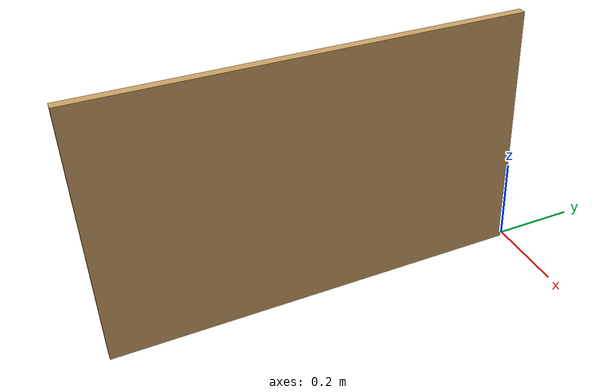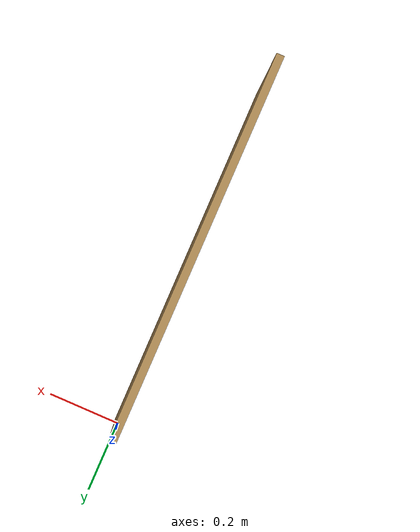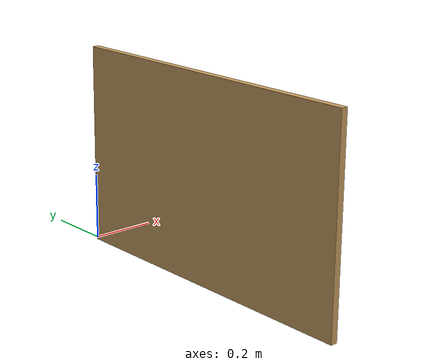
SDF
<?xml version='1.0'?>
<sdf version="1.4">
    <model name="plywood_panel">
        <static>true</static>

        <link name="main">
            <pose>0 0 0 0 0 0</pose>
            <collision name="collision">
                <pose>0.0 -0.5 0.3 -1.571 0 -1.571</pose>
                <geometry>
                    <box>
                        <size>0.98 0.6 0.02</size>
                    </box>
                </geometry>
            </collision>

            <visual name="visual">
                <pose>0.0 -0.5 0.3 -1.571 0 -1.571</pose>
                <geometry>
                    <box>
                        <size>0.98 0.6 0.02</size>
                    </box>
                </geometry>
                <material>
                    <ambient>0.62 0.48 0.28 1</ambient>
                    <diffuse>0.78 0.62 0.38 1</diffuse>
                    <specular>0.10 0.08 0.05 1</specular>
                </material>
            </visual>
        </link>

    </model>
</sdf>
